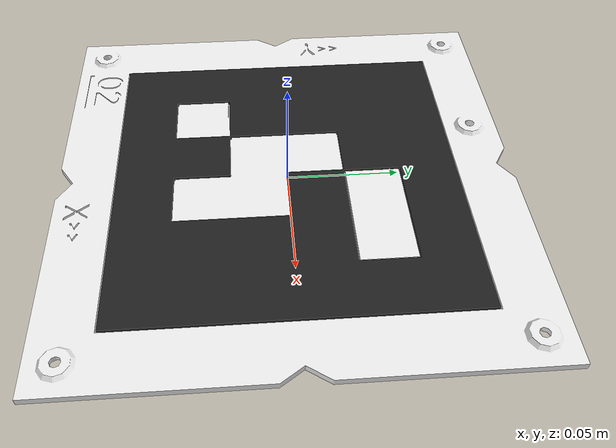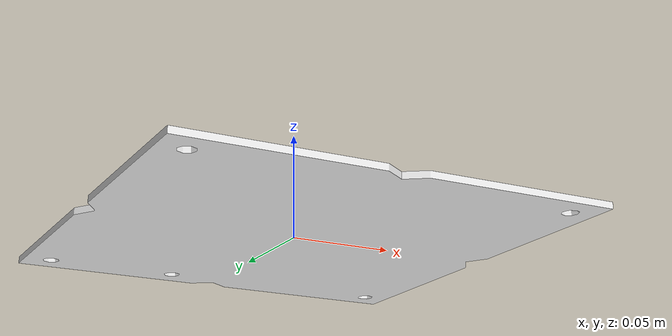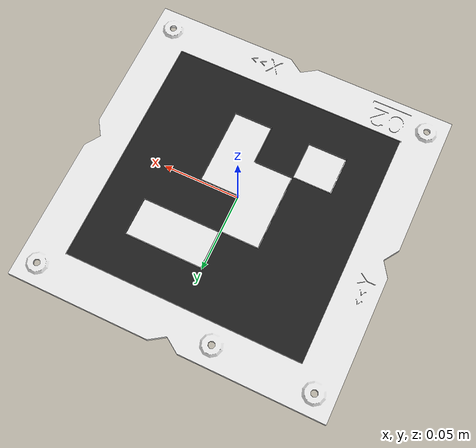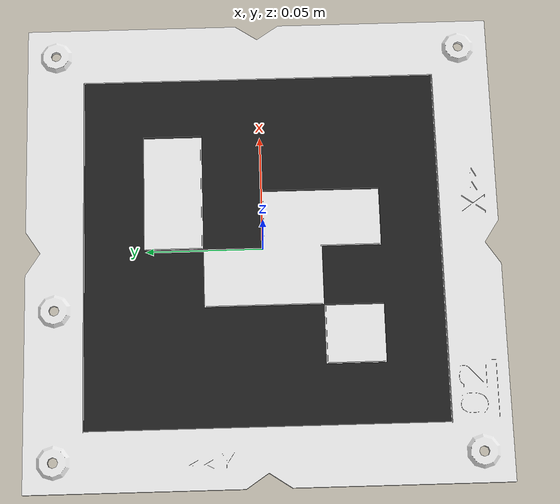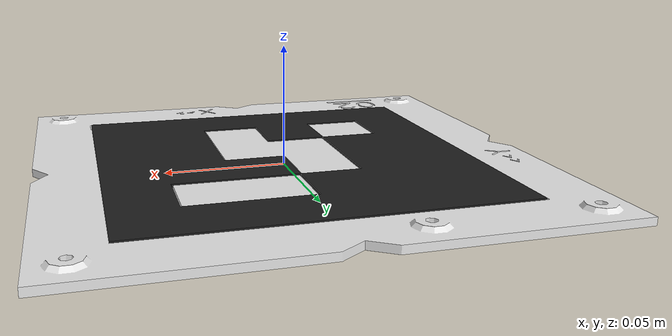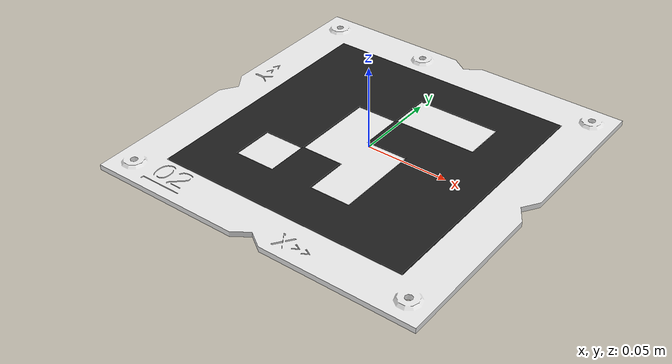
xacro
<robot name="april02" xmlns:xacro="http://ros.org/wiki/xacro">
	<xacro:property name="X_id" value="id02" />
	<xacro:property name="aprilID" value="april02" />

	<link name="${aprilID}/base_footprint"/>
	<joint name="base_joint" type="fixed">
		<origin xyz="0 0 0" rpy="0 0 0" />
		<parent link="${aprilID}/base_footprint"/>
		<child link="${aprilID}/base_link" />
	</joint>
	<joint name="fill_joint" type="fixed">
		<origin xyz="0 0 ${0.06*0.0254}" rpy="0 0 0" />
		<parent link="${aprilID}/base_link"/>
		<child link="${aprilID}/fill_link" />
	</joint>

	<link name="${aprilID}/base_link">
		<visual>
			<geometry>
				<mesh filename="package://robot_descriptions/tags/dae/${X_id}_16h5_white.dae" />
			</geometry>
			<origin xyz="0 0 0" rpy="0 0 0"/>
			<material name="white"/>
		</visual>
		<collision>
			<geometry>
				<box size="${8*0.0254} ${8*0.0254} 0.001"/>
			</geometry>
			<origin xyz="0 0 0" rpy="0 0 0"/>
		</collision>
		<inertial>
			<mass value="1"/> <!-- 2.4/2.6 kg for small/big battery pack -->
			<origin xyz="0 0 0"/>
			<inertia ixx="1" ixy="0.0" ixz="0.0" iyy="1" iyz="0.0" izz="1" />
		</inertial>
	</link>

	<link name="${aprilID}/fill_link">
		<visual>
			<geometry>
				<mesh filename="package://robot_descriptions/tags/dae/${X_id}_16h5_black.dae" />
			</geometry>
			<origin xyz="0 0 0" rpy="0 0 0"/>
			<material name="black"/>
		</visual>
		<collision>
			<geometry>
				<box size="${6*0.0254} ${6*0.0254} 0.001"/>
			</geometry>
			<origin xyz="0 0 0" rpy="0 0 0"/>
		</collision>
		<inertial>
			<mass value="1"/> <!-- 2.4/2.6 kg for small/big battery pack -->
			<origin xyz="0 0 0"/>
			<inertia ixx="1" ixy="0.0" ixz="0.0" iyy="1" iyz="0.0" izz="1" />
		</inertial>
	</link>

</robot>
